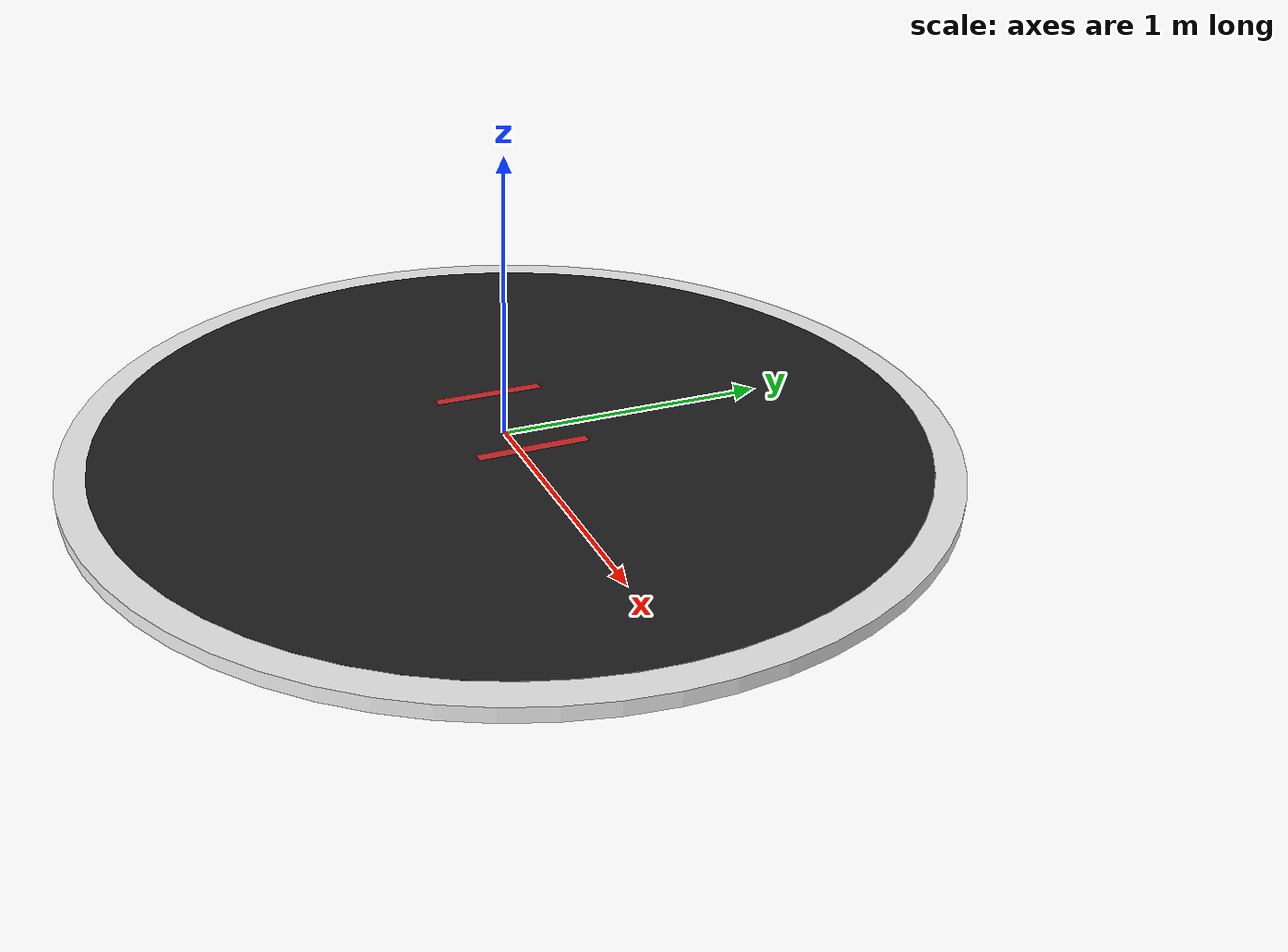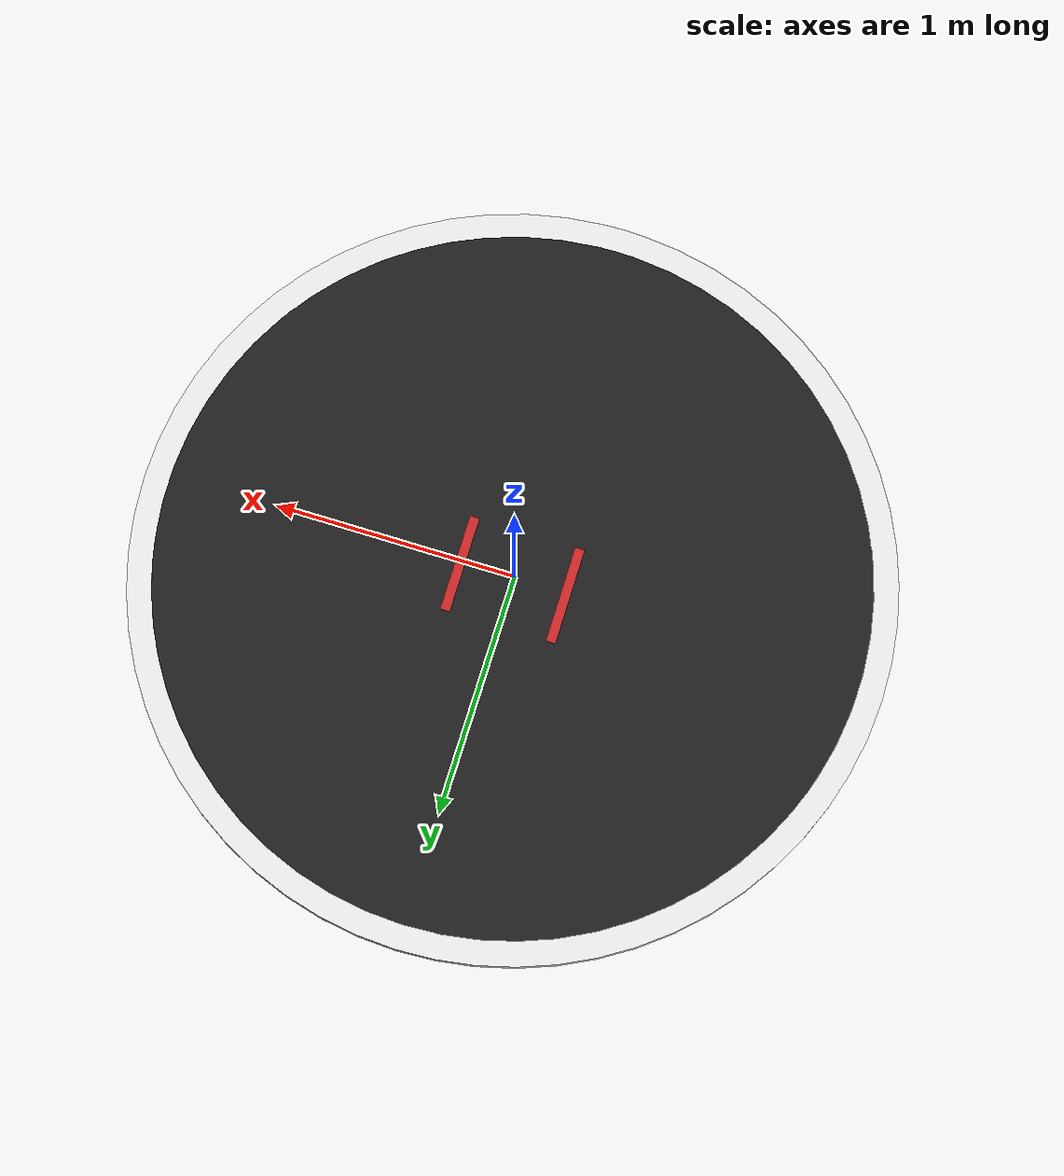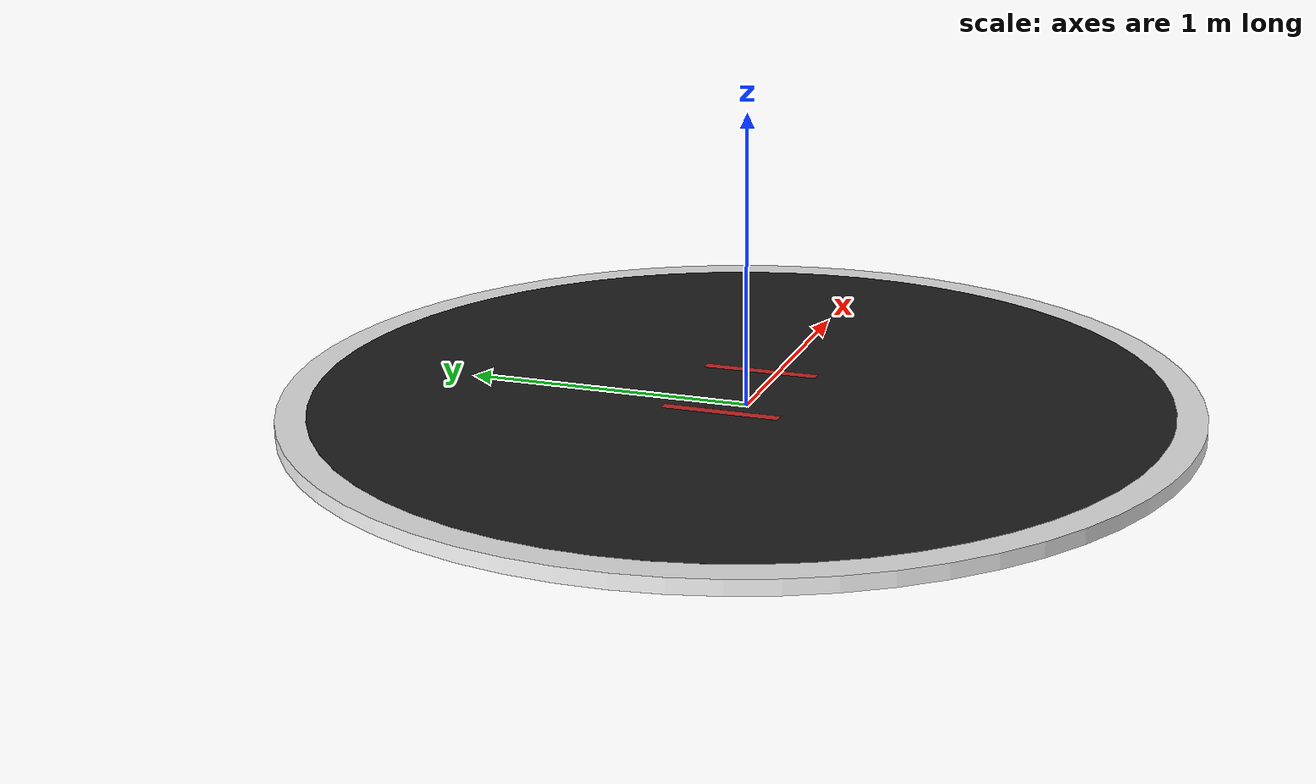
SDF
<?xml version="1.0" ?>

<sdf version='1.6'>
  <model name='turtlebot3_dohyo'>

    <link name='base_link'>
      <pose frame=''>0 0 0.025 0 0 0</pose>

      <collision name='base_link_collision'>
        <pose frame=''>0 0 0 0 0 0</pose>
        <geometry>
          <mesh>
            <scale>1 1 1</scale>
            <uri>model://turtlebot3_dohyo/meshes/dohyo.stl</uri>
          </mesh>
        </geometry>

        <surface>
          <friction>
            <ode>
              <mu>100</mu>
              <mu2>50</mu2>
            </ode>
          </friction>
        </surface>

      </collision>

      <visual name='base_link_visual_base'>
        <pose frame=''>0 0 0 0 0 0</pose>
        <geometry>
          <mesh>
            <scale>1 1 1</scale>
            <uri>model://turtlebot3_dohyo/meshes/base.stl</uri>
          </mesh>
        </geometry>
        <material>
          <script>
            <uri>file://media/materials/scripts/gazebo.material</uri>
            <name>Gazebo/FlatBlack</name>
          </script>
        </material>
      </visual>

      <visual name='base_link_visual_borda'>
        <pose frame=''>0 0 0 0 0 0</pose>
        <geometry>
          <mesh>
            <scale>1 1 1</scale>
            <uri>model://turtlebot3_dohyo/meshes/borda.stl</uri>
          </mesh>
        </geometry>
        <material>
          <script>
            <uri>file://media/materials/scripts/gazebo.material</uri>
            <name>Gazebo/White</name>
          </script>
        </material>
      </visual>

      <visual name='base_link_visual_shikiri'>
        <pose frame=''>0 0 0 0 0 0</pose>
        <geometry>
          <mesh>
            <scale>1 1 1</scale>
            <uri>model://turtlebot3_dohyo/meshes/shikiri.stl</uri>
          </mesh>
        </geometry>
        <material>
          <script>
            <uri>file://media/materials/scripts/gazebo.material</uri>
            <name>Gazebo/Red</name>
          </script>
        </material>
      </visual>

    </link>
    <static>1</static>
  </model>
</sdf>
